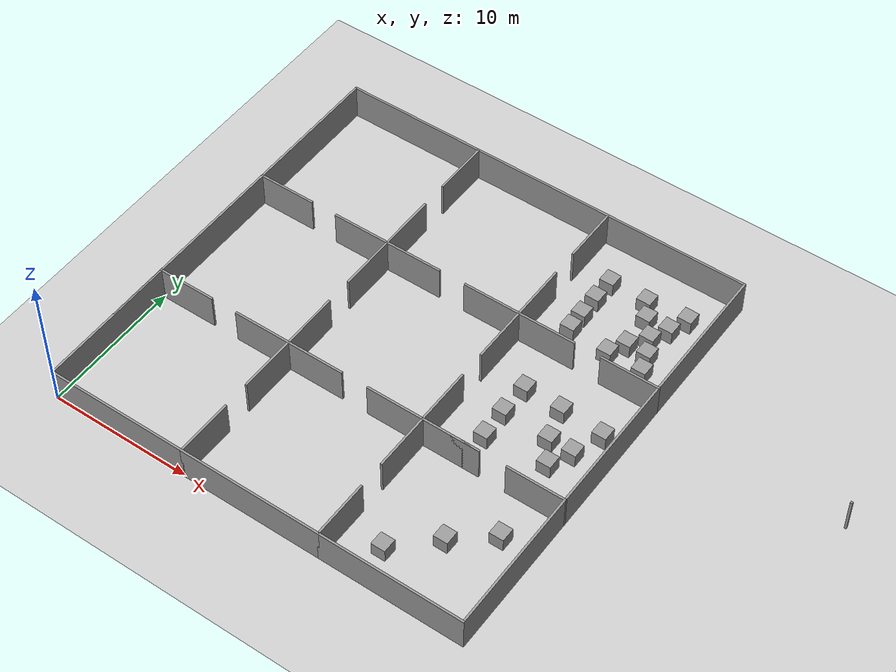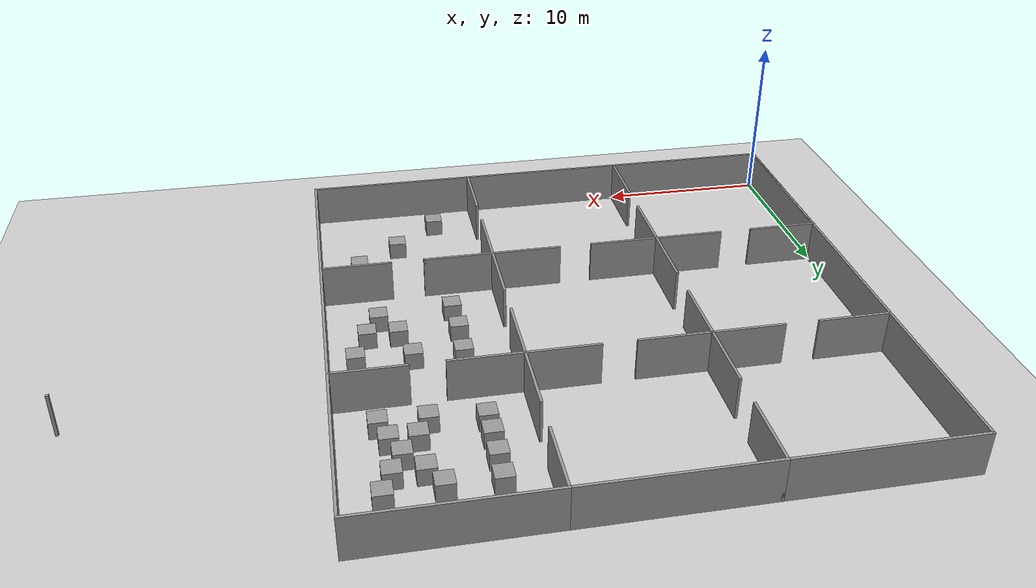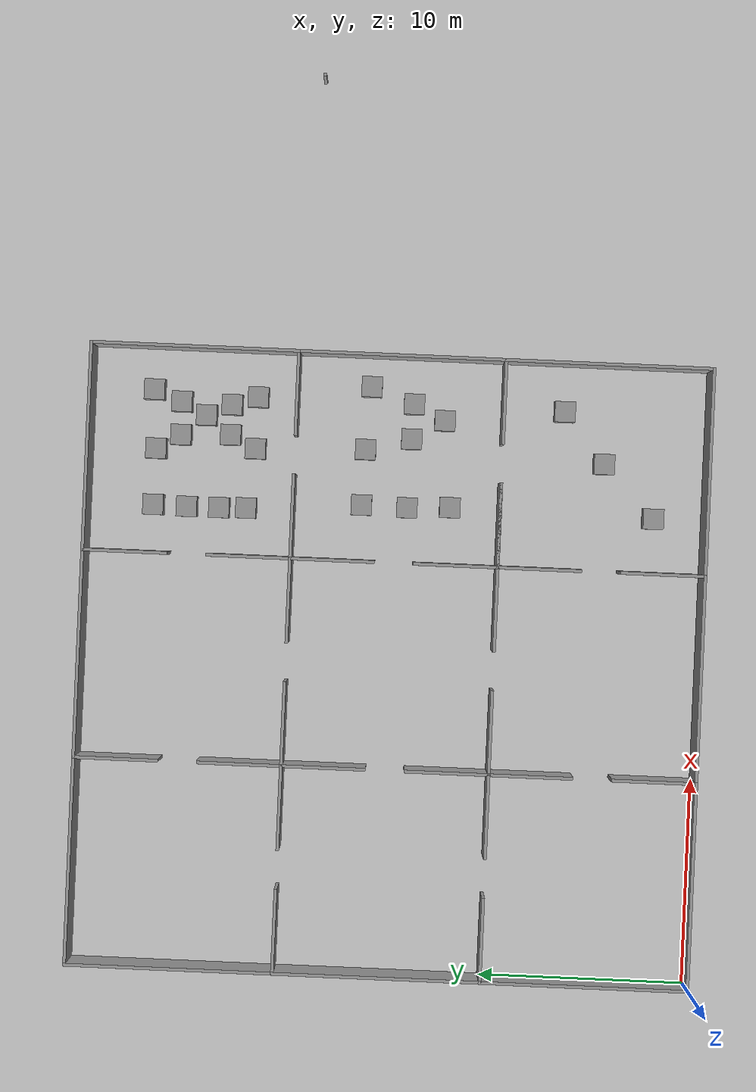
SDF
<sdf version="1.7">
 <world name="default">
  <model name="ground_plane">
   <static>1</static>
   <link name="link">
    <collision name="collision">
     <geometry><plane><normal>0 0 1</normal><size>100 100</size></plane></geometry>
     <surface>
      <contact><collide_bitmask>65535</collide_bitmask></contact>
      <friction><ode><mu>100</mu><mu2>50</mu2></ode></friction>
     </surface>
    </collision>
    <visual name="visual">
     <cast_shadows>0</cast_shadows>
     <geometry><plane><normal>0 0 1</normal><size>100 100</size></plane></geometry>
     <material>
      <script><uri>file://media/materials/scripts/gazebo.material</uri><name>Gazebo/Grey</name></script>
     </material>
    </visual>
   </link>
  </model>
  <model name="Building_3x3">
   <pose>21.6715 15 0 0 -0 0</pose>
   <link name="Wall_17">
    <collision name="Wall_17_Collision">
     <geometry><box><size>4.15 0.15 2.5</size></box></geometry>
     <pose>0 0 1.25 0 -0 0</pose>
    </collision>
    <visual name="Wall_17_Visual">
     <pose>0 0 1.25 0 -0 0</pose>
     <geometry><box><size>4.15 0.15 2.5</size></box></geometry>
     <material>
      <script><uri>file://media/materials/scripts/gazebo.material</uri><name>Gazebo/Grey</name></script>
      <ambient>1 1 1 1</ambient>
     </material>
     <meta><layer>0</layer></meta>
    </visual>
    <pose>-13.6715 -5 0 0 -0 0</pose>
   </link>
   <link name="Wall_20">
    <collision name="Wall_20_Collision">
     <geometry><box><size>10.15 0.15 2.5</size></box></geometry>
     <pose>0 0 1.25 0 -0 0</pose>
    </collision>
    <visual name="Wall_20_Visual">
     <pose>0 0 1.25 0 -0 0</pose>
     <geometry><box><size>10.15 0.15 2.5</size></box></geometry>
     <material>
      <script><uri>file://media/materials/scripts/gazebo.material</uri><name>Gazebo/Grey</name></script>
      <ambient>1 1 1 1</ambient>
     </material>
     <meta><layer>0</layer></meta>
    </visual>
    <pose>-21.6715 -10 0 0 -0 1.5708</pose>
   </link>
   <link name="Wall_22">
    <collision name="Wall_22_Collision">
     <geometry><box><size>4.15 0.15 2.5</size></box></geometry>
     <pose>0 0 1.25 0 -0 0</pose>
    </collision>
    <visual name="Wall_22_Visual">
     <pose>0 0 1.25 0 -0 0</pose>
     <geometry><box><size>4.15 0.15 2.5</size></box></geometry>
     <material>
      <script><uri>file://media/materials/scripts/gazebo.material</uri><name>Gazebo/Grey</name></script>
      <ambient>1 1 1 1</ambient>
     </material>
     <meta><layer>0</layer></meta>
    </visual>
    <pose>-19.6715 -5 0 0 -0 0</pose>
   </link>
   <link name="Wall_26">
    <collision name="Wall_26_Collision">
     <geometry><box><size>10.15 0.15 2.5</size></box></geometry>
     <pose>0 0 1.25 0 -0 0</pose>
    </collision>
    <visual name="Wall_26_Visual">
     <pose>0 0 1.25 0 -0 0</pose>
     <geometry><box><size>10.15 0.15 2.5</size></box></geometry>
     <material>
      <script><uri>file://media/materials/scripts/gazebo.material</uri><name>Gazebo/Grey</name></script>
      <ambient>1 1 1 1</ambient>
     </material>
     <meta><layer>0</layer></meta>
    </visual>
    <pose>-16.6715 -15 0 0 -0 0</pose>
   </link>
   <link name="Wall_28">
    <collision name="Wall_28_Collision">
     <geometry><box><size>4.15 0.15 2.5</size></box></geometry>
     <pose>0 0 1.25 0 -0 0</pose>
    </collision>
    <visual name="Wall_28_Visual">
     <pose>0 0 1.25 0 -0 0</pose>
     <geometry><box><size>4.15 0.15 2.5</size></box></geometry>
     <material>
      <script><uri>file://media/materials/scripts/gazebo.material</uri><name>Gazebo/Grey</name></script>
      <ambient>1 1 1 1</ambient>
     </material>
     <meta><layer>0</layer></meta>
    </visual>
    <pose>-11.6715 -7 0 0 -0 1.5708</pose>
   </link>
   <link name="Wall_30">
    <collision name="Wall_30_Collision">
     <geometry><box><size>4.15 0.15 2.5</size></box></geometry>
     <pose>0 0 1.25 0 -0 0</pose>
    </collision>
    <visual name="Wall_30_Visual">
     <pose>0 0 1.25 0 -0 0</pose>
     <geometry><box><size>4.15 0.15 2.5</size></box></geometry>
     <material>
      <script><uri>file://media/materials/scripts/gazebo.material</uri><name>Gazebo/Grey</name></script>
      <ambient>1 1 1 1</ambient>
     </material>
     <meta><layer>0</layer></meta>
    </visual>
    <pose>-11.6715 -13 0 0 -0 1.5708</pose>
   </link>
   <link name="Wall_33">
    <collision name="Wall_33_Collision">
     <geometry><box><size>10.15 0.15 2.5</size></box></geometry>
     <pose>0 0 1.25 0 -0 0</pose>
    </collision>
    <visual name="Wall_33_Visual">
     <pose>0 0 1.25 0 -0 0</pose>
     <geometry><box><size>10.15 0.15 2.5</size></box></geometry>
     <material>
      <script><uri>file://media/materials/scripts/gazebo.material</uri><name>Gazebo/Grey</name></script>
      <ambient>1 1 1 1</ambient>
     </material>
     <meta><layer>0</layer></meta>
    </visual>
    <pose>-6.67153 -15 0 0 -0 0</pose>
   </link>
   <link name="Wall_35">
    <collision name="Wall_35_Collision">
     <geometry><box><size>4.15 0.15 2.5</size></box></geometry>
     <pose>0 0 1.25 0 -0 0</pose>
    </collision>
    <visual name="Wall_35_Visual">
     <pose>0 0 1.25 0 -0 0</pose>
     <geometry><box><size>4.15 0.15 2.5</size></box></geometry>
     <material>
      <script><uri>file://media/materials/scripts/gazebo.material</uri><name>Gazebo/Grey</name></script>
      <ambient>1 1 1 1</ambient>
     </material>
     <meta><layer>0</layer></meta>
    </visual>
    <pose>-1.67153 -13 0 0 -0 -1.5708</pose>
   </link>
   <link name="Wall_37">
    <collision name="Wall_37_Collision">
     <geometry><box><size>4.15 0.15 2.5</size></box></geometry>
     <pose>0 0 1.25 0 -0 0</pose>
    </collision>
    <visual name="Wall_37_Visual">
     <pose>0 0 1.25 0 -0 0</pose>
     <geometry><box><size>4.15 0.15 2.5</size></box></geometry>
     <material>
      <script><uri>file://media/materials/scripts/gazebo.material</uri><name>Gazebo/Grey</name></script>
      <ambient>1 1 1 1</ambient>
     </material>
     <meta><layer>0</layer></meta>
    </visual>
    <pose>-1.67153 -7 0 0 -0 1.5708</pose>
   </link>
   <link name="Wall_39">
    <collision name="Wall_39_Collision">
     <geometry><box><size>4.15 0.15 2.5</size></box></geometry>
     <pose>0 0 1.25 0 -0 0</pose>
    </collision>
    <visual name="Wall_39_Visual">
     <pose>0 0 1.25 0 -0 0</pose>
     <geometry><box><size>4.15 0.15 2.5</size></box></geometry>
     <material>
      <script><uri>file://media/materials/scripts/gazebo.material</uri><name>Gazebo/Grey</name></script>
      <ambient>1 1 1 1</ambient>
     </material>
     <meta><layer>0</layer></meta>
    </visual>
    <pose>-9.67153 -5 0 0 -0 0</pose>
   </link>
   <link name="Wall_41">
    <collision name="Wall_41_Collision">
     <geometry><box><size>8.15 0.15 2.5</size></box></geometry>
     <pose>0 0 1.25 0 -0 0</pose>
    </collision>
    <visual name="Wall_41_Visual">
     <pose>0 0 1.25 0 -0 0</pose>
     <geometry><box><size>8.15 0.15 2.5</size></box></geometry>
     <material>
      <script><uri>file://media/materials/scripts/gazebo.material</uri><name>Gazebo/Grey</name></script>
      <ambient>1 1 1 1</ambient>
     </material>
     <meta><layer>0</layer></meta>
    </visual>
    <pose>-1.67153 -5 0 0 -0 0</pose>
   </link>
   <link name="Wall_44">
    <collision name="Wall_44_Collision">
     <geometry><box><size>10.15 0.15 2.5</size></box></geometry>
     <pose>0 0 1.25 0 -0 0</pose>
    </collision>
    <visual name="Wall_44_Visual">
     <pose>0 0 1.25 0 -0 0</pose>
     <geometry><box><size>10.15 0.15 2.5</size></box></geometry>
     <material>
      <script><uri>file://media/materials/scripts/gazebo.material</uri><name>Gazebo/Grey</name></script>
      <ambient>1 1 1 1</ambient>
     </material>
     <meta><layer>0</layer></meta>
    </visual>
    <pose>3.32847 -15 0 0 -0 0</pose>
   </link>
   <link name="Wall_46">
    <collision name="Wall_46_Collision">
     <geometry><box><size>10.15 0.15 2.5</size></box></geometry>
     <pose>0 0 1.25 0 -0 0</pose>
    </collision>
    <visual name="Wall_46_Visual">
     <pose>0 0 1.25 0 -0 0</pose>
     <geometry><box><size>10.15 0.15 2.5</size></box></geometry>
     <material>
      <script><uri>file://media/materials/scripts/gazebo.material</uri><name>Gazebo/Grey</name></script>
      <ambient>1 1 1 1</ambient>
     </material>
     <meta><layer>0</layer></meta>
    </visual>
    <pose>8.32847 -10 0 0 -0 1.5708</pose>
   </link>
   <link name="Wall_48">
    <collision name="Wall_48_Collision">
     <geometry><box><size>4.15 0.15 2.5</size></box></geometry>
     <pose>0 0 1.25 0 -0 0</pose>
    </collision>
    <visual name="Wall_48_Visual">
     <pose>0 0 1.25 0 -0 0</pose>
     <geometry><box><size>4.15 0.15 2.5</size></box></geometry>
     <material>
      <script><uri>file://media/materials/scripts/gazebo.material</uri><name>Gazebo/Grey</name></script>
      <ambient>1 1 1 1</ambient>
     </material>
     <meta><layer>0</layer></meta>
    </visual>
    <pose>6.32847 -5 0 0 -0 3.14159</pose>
   </link>
   <link name="Wall_50">
    <collision name="Wall_50_Collision">
     <geometry><box><size>0.16 0.15 2.5</size></box></geometry>
     <pose>0 0 1.25 0 -0 0</pose>
    </collision>
    <visual name="Wall_50_Visual">
     <pose>0 0 1.25 0 -0 0</pose>
     <geometry><box><size>0.16 0.15 2.5</size></box></geometry>
     <material>
      <script><uri>file://media/materials/scripts/gazebo.material</uri><name>Gazebo/Grey</name></script>
      <ambient>1 1 1 1</ambient>
     </material>
     <meta><layer>0</layer></meta>
    </visual>
    <pose>21.6665 4.32487 0 0 -0 0</pose>
   </link>
   <link name="Wall_52">
    <collision name="Wall_52_Collision">
     <geometry><box><size>4.15 0.15 2.5</size></box></geometry>
     <pose>0 0 1.25 0 -0 0</pose>
    </collision>
    <visual name="Wall_52_Visual">
     <pose>0 0 1.25 0 -0 0</pose>
     <geometry><box><size>4.15 0.15 2.5</size></box></geometry>
     <material>
      <script><uri>file://media/materials/scripts/gazebo.material</uri><name>Gazebo/Grey</name></script>
      <ambient>1 1 1 1</ambient>
     </material>
     <meta><layer>0</layer></meta>
    </visual>
    <pose>0.328472 -5 0 0 -0 0</pose>
   </link>
   <link name="Wall_54">
    <collision name="Wall_54_Collision">
     <geometry><box><size>20.15 0.15 2.5</size></box></geometry>
     <pose>0 0 1.25 0 -0 0</pose>
    </collision>
    <visual name="Wall_54_Visual">
     <pose>0 0 1.25 0 -0 0</pose>
     <geometry><box><size>20.15 0.15 2.5</size></box></geometry>
     <material>
      <script><uri>file://media/materials/scripts/gazebo.material</uri><name>Gazebo/Grey</name></script>
      <ambient>1 1 1 1</ambient>
     </material>
     <meta><layer>0</layer></meta>
    </visual>
    <pose>-21.6715 -5 0 0 -0 1.5708</pose>
   </link>
   <link name="Wall_56">
    <collision name="Wall_56_Collision">
     <geometry><box><size>10.15 0.15 2.5</size></box></geometry>
     <pose>0 0 1.25 0 -0 0</pose>
    </collision>
    <visual name="Wall_56_Visual">
     <pose>0 0 1.25 0 -0 0</pose>
     <geometry><box><size>10.15 0.15 2.5</size></box></geometry>
     <material>
      <script><uri>file://media/materials/scripts/gazebo.material</uri><name>Gazebo/Grey</name></script>
      <ambient>1 1 1 1</ambient>
     </material>
     <meta><layer>0</layer></meta>
    </visual>
    <pose>-21.6715 10 0 0 -0 1.5708</pose>
   </link>
   <link name="Wall_58">
    <collision name="Wall_58_Collision">
     <geometry><box><size>10.15 0.15 2.5</size></box></geometry>
     <pose>0 0 1.25 0 -0 0</pose>
    </collision>
    <visual name="Wall_58_Visual">
     <pose>0 0 1.25 0 -0 0</pose>
     <geometry><box><size>10.15 0.15 2.5</size></box></geometry>
     <material>
      <script><uri>file://media/materials/scripts/gazebo.material</uri><name>Gazebo/Grey</name></script>
      <ambient>1 1 1 1</ambient>
     </material>
     <meta><layer>0</layer></meta>
    </visual>
    <pose>3.32847 15 0 0 -0 0</pose>
   </link>
   <link name="Wall_60">
    <collision name="Wall_60_Collision">
     <geometry><box><size>10.15 0.15 2.5</size></box></geometry>
     <pose>0 0 1.25 0 -0 0</pose>
    </collision>
    <visual name="Wall_60_Visual">
     <pose>0 0 1.25 0 -0 0</pose>
     <geometry><box><size>10.15 0.15 2.5</size></box></geometry>
     <material>
      <script><uri>file://media/materials/scripts/gazebo.material</uri><name>Gazebo/Grey</name></script>
      <ambient>1 1 1 1</ambient>
     </material>
     <meta><layer>0</layer></meta>
    </visual>
    <pose>-6.67153 15 0 0 -0 0</pose>
   </link>
   <link name="Wall_62">
    <collision name="Wall_62_Collision">
     <geometry><box><size>10.15 0.15 2.5</size></box></geometry>
     <pose>0 0 1.25 0 -0 0</pose>
    </collision>
    <visual name="Wall_62_Visual">
     <pose>0 0 1.25 0 -0 0</pose>
     <geometry><box><size>10.15 0.15 2.5</size></box></geometry>
     <material>
      <script><uri>file://media/materials/scripts/gazebo.material</uri><name>Gazebo/Grey</name></script>
      <ambient>1 1 1 1</ambient>
     </material>
     <meta><layer>0</layer></meta>
    </visual>
    <pose>-16.6715 15 0 0 -0 0</pose>
   </link>
   <link name="Wall_64">
    <collision name="Wall_64_Collision">
     <geometry><box><size>10.15 0.15 2.5</size></box></geometry>
     <pose>0 0 1.25 0 -0 0</pose>
    </collision>
    <visual name="Wall_64_Visual">
     <pose>0 0 1.25 0 -0 0</pose>
     <geometry><box><size>10.15 0.15 2.5</size></box></geometry>
     <material>
      <script><uri>file://media/materials/scripts/gazebo.material</uri><name>Gazebo/Grey</name></script>
      <ambient>1 1 1 1</ambient>
     </material>
     <meta><layer>0</layer></meta>
    </visual>
    <pose>8.32847 10 0 0 -0 -1.5708</pose>
   </link>
   <link name="Wall_66">
    <collision name="Wall_66_Collision">
     <geometry><box><size>10.15 0.15 2.5</size></box></geometry>
     <pose>0 0 1.25 0 -0 0</pose>
    </collision>
    <visual name="Wall_66_Visual">
     <pose>0 0 1.25 0 -0 0</pose>
     <geometry><box><size>10.15 0.15 2.5</size></box></geometry>
     <material>
      <script><uri>file://media/materials/scripts/gazebo.material</uri><name>Gazebo/Grey</name></script>
      <ambient>1 1 1 1</ambient>
     </material>
     <meta><layer>0</layer></meta>
    </visual>
    <pose>8.32847 0 0 0 -0 -1.5708</pose>
   </link>
   <link name="Wall_68">
    <collision name="Wall_68_Collision">
     <geometry><box><size>4.15 0.15 2.5</size></box></geometry>
     <pose>0 0 1.25 0 -0 0</pose>
    </collision>
    <visual name="Wall_68_Visual">
     <pose>0 0 1.25 0 -0 0</pose>
     <geometry><box><size>4.15 0.15 2.5</size></box></geometry>
     <material>
      <script><uri>file://media/materials/scripts/gazebo.material</uri><name>Gazebo/Grey</name></script>
      <ambient>1 1 1 1</ambient>
     </material>
     <meta><layer>0</layer></meta>
    </visual>
    <pose>-19.6715 5 0 0 -0 0</pose>
   </link>
   <link name="Wall_70">
    <collision name="Wall_70_Collision">
     <geometry><box><size>4.15 0.15 2.5</size></box></geometry>
     <pose>0 0 1.25 0 -0 0</pose>
    </collision>
    <visual name="Wall_70_Visual">
     <pose>0 0 1.25 0 -0 0</pose>
     <geometry><box><size>4.15 0.15 2.5</size></box></geometry>
     <material>
      <script><uri>file://media/materials/scripts/gazebo.material</uri><name>Gazebo/Grey</name></script>
      <ambient>1 1 1 1</ambient>
     </material>
     <meta><layer>0</layer></meta>
    </visual>
    <pose>-13.6715 5 0 0 -0 0</pose>
   </link>
   <link name="Wall_72">
    <collision name="Wall_72_Collision">
     <geometry><box><size>4.15 0.15 2.5</size></box></geometry>
     <pose>0 0 1.25 0 -0 0</pose>
    </collision>
    <visual name="Wall_72_Visual">
     <pose>0 0 1.25 0 -0 0</pose>
     <geometry><box><size>4.15 0.15 2.5</size></box></geometry>
     <material>
      <script><uri>file://media/materials/scripts/gazebo.material</uri><name>Gazebo/Grey</name></script>
      <ambient>1 1 1 1</ambient>
     </material>
     <meta><layer>0</layer></meta>
    </visual>
    <pose>-11.6715 3 0 0 -0 -1.5708</pose>
   </link>
   <link name="Wall_74">
    <collision name="Wall_74_Collision">
     <geometry><box><size>4.15 0.15 2.5</size></box></geometry>
     <pose>0 0 1.25 0 -0 0</pose>
    </collision>
    <visual name="Wall_74_Visual">
     <pose>0 0 1.25 0 -0 0</pose>
     <geometry><box><size>4.15 0.15 2.5</size></box></geometry>
     <material>
      <script><uri>file://media/materials/scripts/gazebo.material</uri><name>Gazebo/Grey</name></script>
      <ambient>1 1 1 1</ambient>
     </material>
     <meta><layer>0</layer></meta>
    </visual>
    <pose>-11.6715 -3 0 0 -0 1.5708</pose>
   </link>
   <link name="Wall_76">
    <collision name="Wall_76_Collision">
     <geometry><box><size>4.15 0.15 2.5</size></box></geometry>
     <pose>0 0 1.25 0 -0 0</pose>
    </collision>
    <visual name="Wall_76_Visual">
     <pose>0 0 1.25 0 -0 0</pose>
     <geometry><box><size>4.15 0.15 2.5</size></box></geometry>
     <material>
      <script><uri>file://media/materials/scripts/gazebo.material</uri><name>Gazebo/Grey</name></script>
      <ambient>1 1 1 1</ambient>
     </material>
     <meta><layer>0</layer></meta>
    </visual>
    <pose>-3.67153 5 0 0 -0 3.14159</pose>
   </link>
   <link name="Wall_78">
    <collision name="Wall_78_Collision">
     <geometry><box><size>4.15 0.15 2.5</size></box></geometry>
     <pose>0 0 1.25 0 -0 0</pose>
    </collision>
    <visual name="Wall_78_Visual">
     <pose>0 0 1.25 0 -0 0</pose>
     <geometry><box><size>4.15 0.15 2.5</size></box></geometry>
     <material>
      <script><uri>file://media/materials/scripts/gazebo.material</uri><name>Gazebo/Grey</name></script>
      <ambient>1 1 1 1</ambient>
     </material>
     <meta><layer>0</layer></meta>
    </visual>
    <pose>-9.67153 5 0 0 -0 0</pose>
   </link>
   <link name="Wall_80">
    <collision name="Wall_80_Collision">
     <geometry><box><size>4.15 0.15 2.5</size></box></geometry>
     <pose>0 0 1.25 0 -0 0</pose>
    </collision>
    <visual name="Wall_80_Visual">
     <pose>0 0 1.25 0 -0 0</pose>
     <geometry><box><size>4.15 0.15 2.5</size></box></geometry>
     <material>
      <script><uri>file://media/materials/scripts/gazebo.material</uri><name>Gazebo/Grey</name></script>
      <ambient>1 1 1 1</ambient>
     </material>
     <meta><layer>0</layer></meta>
    </visual>
    <pose>-1.67153 3 0 0 -0 -1.5708</pose>
   </link>
   <link name="Wall_82">
    <collision name="Wall_82_Collision">
     <geometry><box><size>4.15 0.15 2.5</size></box></geometry>
     <pose>0 0 1.25 0 -0 0</pose>
    </collision>
    <visual name="Wall_82_Visual">
     <pose>0 0 1.25 0 -0 0</pose>
     <geometry><box><size>4.15 0.15 2.5</size></box></geometry>
     <material>
      <script><uri>file://media/materials/scripts/gazebo.material</uri><name>Gazebo/Grey</name></script>
      <ambient>1 1 1 1</ambient>
     </material>
     <meta><layer>0</layer></meta>
    </visual>
    <pose>-1.67153 -3 0 0 -0 1.5708</pose>
   </link>
   <link name="Wall_84">
    <collision name="Wall_84_Collision">
     <geometry><box><size>4.15 0.15 2.5</size></box></geometry>
     <pose>0 0 1.25 0 -0 0</pose>
    </collision>
    <visual name="Wall_84_Visual">
     <pose>0 0 1.25 0 -0 0</pose>
     <geometry><box><size>4.15 0.15 2.5</size></box></geometry>
     <material>
      <script><uri>file://media/materials/scripts/gazebo.material</uri><name>Gazebo/Grey</name></script>
      <ambient>1 1 1 1</ambient>
     </material>
     <meta><layer>0</layer></meta>
    </visual>
    <pose>0.328472 5 0 0 -0 0</pose>
   </link>
   <link name="Wall_86">
    <collision name="Wall_86_Collision">
     <geometry><box><size>4.15 0.15 2.5</size></box></geometry>
     <pose>0 0 1.25 0 -0 0</pose>
    </collision>
    <visual name="Wall_86_Visual">
     <pose>0 0 1.25 0 -0 0</pose>
     <geometry><box><size>4.15 0.15 2.5</size></box></geometry>
     <material>
      <script><uri>file://media/materials/scripts/gazebo.material</uri><name>Gazebo/Grey</name></script>
      <ambient>1 1 1 1</ambient>
     </material>
     <meta><layer>0</layer></meta>
    </visual>
    <pose>6.32847 5 0 0 -0 0</pose>
   </link>
   <link name="Wall_88">
    <collision name="Wall_88_Collision">
     <geometry><box><size>4.15 0.15 2.5</size></box></geometry>
     <pose>0 0 1.25 0 -0 0</pose>
    </collision>
    <visual name="Wall_88_Visual">
     <pose>0 0 1.25 0 -0 0</pose>
     <geometry><box><size>4.15 0.15 2.5</size></box></geometry>
     <material>
      <script><uri>file://media/materials/scripts/gazebo.material</uri><name>Gazebo/Grey</name></script>
      <ambient>1 1 1 1</ambient>
     </material>
     <meta><layer>0</layer></meta>
    </visual>
    <pose>-1.67153 13 0 0 -0 -1.5708</pose>
   </link>
   <link name="Wall_90">
    <collision name="Wall_90_Collision">
     <geometry><box><size>4.15 0.15 2.5</size></box></geometry>
     <pose>0 0 1.25 0 -0 0</pose>
    </collision>
    <visual name="Wall_90_Visual">
     <pose>0 0 1.25 0 -0 0</pose>
     <geometry><box><size>4.15 0.15 2.5</size></box></geometry>
     <material>
      <script><uri>file://media/materials/scripts/gazebo.material</uri><name>Gazebo/Grey</name></script>
      <ambient>1 1 1 1</ambient>
     </material>
     <meta><layer>0</layer></meta>
    </visual>
    <pose>-1.67153 7 0 0 -0 1.5708</pose>
   </link>
   <link name="Wall_92">
    <collision name="Wall_92_Collision">
     <geometry><box><size>4.15 0.15 2.5</size></box></geometry>
     <pose>0 0 1.25 0 -0 0</pose>
    </collision>
    <visual name="Wall_92_Visual">
     <pose>0 0 1.25 0 -0 0</pose>
     <geometry><box><size>4.15 0.15 2.5</size></box></geometry>
     <material>
      <script><uri>file://media/materials/scripts/gazebo.material</uri><name>Gazebo/Grey</name></script>
      <ambient>1 1 1 1</ambient>
     </material>
     <meta><layer>0</layer></meta>
    </visual>
    <pose>-11.6715 7 0 0 -0 1.5708</pose>
   </link>
   <link name="Wall_94">
    <collision name="Wall_94_Collision">
     <geometry><box><size>4.15 0.15 2.5</size></box></geometry>
     <pose>0 0 1.25 0 -0 0</pose>
    </collision>
    <visual name="Wall_94_Visual">
     <pose>0 0 1.25 0 -0 0</pose>
     <geometry><box><size>4.15 0.15 2.5</size></box></geometry>
     <material>
      <script><uri>file://media/materials/scripts/gazebo.material</uri><name>Gazebo/Grey</name></script>
      <ambient>1 1 1 1</ambient>
     </material>
     <meta><layer>0</layer></meta>
    </visual>
    <pose>-11.6715 13 0 0 -0 1.5708</pose>
   </link>
   <static>1</static>
  </model>
  <model name="unit_box_1_clone">
   <pose>22.6621 2.46352 0.499995 0 -1e-05 0</pose>
   <link name="link">
    <inertial>
     <mass>1</mass>
     <inertia>
      <ixx>0.166667</ixx>
      <ixy>0</ixy>
      <ixz>0</ixz>
      <iyy>0.166667</iyy>
      <iyz>0</iyz>
      <izz>0.166667</izz>
     </inertia>
    </inertial>
    <collision name="collision"><geometry><box><size>1 1 1</size></box></geometry></collision>
    <visual name="visual">
     <geometry><box><size>1 1 1</size></box></geometry>
     <material>
      <script><name>Gazebo/Grey</name><uri>file://media/materials/scripts/gazebo.material</uri></script>
     </material>
    </visual>
   </link>
  </model>
  <model name="unit_box_1_clone_0">
   <pose>25.228 4.96246 0.499995 -1e-05 -0 0</pose>
   <link name="link">
    <inertial>
     <mass>1</mass>
     <inertia>
      <ixx>0.166667</ixx>
      <ixy>0</ixy>
      <ixz>0</ixz>
      <iyy>0.166667</iyy>
      <iyz>0</iyz>
      <izz>0.166667</izz>
     </inertia>
    </inertial>
    <collision name="collision"><geometry><box><size>1 1 1</size></box></geometry></collision>
    <visual name="visual">
     <geometry><box><size>1 1 1</size></box></geometry>
     <material>
      <script><name>Gazebo/Grey</name><uri>file://media/materials/scripts/gazebo.material</uri></script>
     </material>
    </visual>
   </link>
  </model>
  <model name="unit_box_1_clone_1">
   <pose>27.6999 6.98178 0.499995 -1e-05 0 0</pose>
   <link name="link">
    <inertial>
     <mass>1</mass>
     <inertia>
      <ixx>0.166667</ixx>
      <ixy>0</ixy>
      <ixz>0</ixz>
      <iyy>0.166667</iyy>
      <iyz>0</iyz>
      <izz>0.166667</izz>
     </inertia>
    </inertial>
    <collision name="collision"><geometry><box><size>1 1 1</size></box></geometry></collision>
    <visual name="visual">
     <geometry><box><size>1 1 1</size></box></geometry>
     <material>
      <script><name>Gazebo/Grey</name><uri>file://media/materials/scripts/gazebo.material</uri></script>
     </material>
    </visual>
   </link>
  </model>
  <model name="unit_box_2">
   <pose>22.7346 16.6997 0.499995 0 -1e-05 0</pose>
   <link name="link">
    <inertial>
     <mass>1</mass>
     <inertia>
      <ixx>0.166667</ixx>
      <ixy>0</ixy>
      <ixz>0</ixz>
      <iyy>0.166667</iyy>
      <iyz>0</iyz>
      <izz>0.166667</izz>
     </inertia>
    </inertial>
    <collision name="collision"><geometry><box><size>1 1 1</size></box></geometry></collision>
    <visual name="visual">
     <geometry><box><size>1 1 1</size></box></geometry>
     <material>
      <script><name>Gazebo/Grey</name><uri>file://media/materials/scripts/gazebo.material</uri></script>
     </material>
    </visual>
   </link>
  </model>
  <model name="unit_box_1_clone_2">
   <pose>22.6959 14.4762 0.499995 -1e-05 -0 0</pose>
   <link name="link">
    <inertial>
     <mass>1</mass>
     <inertia>
      <ixx>0.166667</ixx>
      <ixy>0</ixy>
      <ixz>0</ixz>
      <iyy>0.166667</iyy>
      <iyz>0</iyz>
      <izz>0.166667</izz>
     </inertia>
    </inertial>
    <collision name="collision"><geometry><box><size>1 1 1</size></box></geometry></collision>
    <visual name="visual">
     <geometry><box><size>1 1 1</size></box></geometry>
     <material>
      <script><name>Gazebo/Grey</name><uri>file://media/materials/scripts/gazebo.material</uri></script>
     </material>
    </visual>
   </link>
  </model>
  <model name="unit_box_1_clone_3">
   <pose>22.7952 12.3886 0.499995 0 -1e-05 0</pose>
   <link name="link">
    <inertial>
     <mass>1</mass>
     <inertia>
      <ixx>0.166667</ixx>
      <ixy>0</ixy>
      <ixz>0</ixz>
      <iyy>0.166667</iyy>
      <iyz>0</iyz>
      <izz>0.166667</izz>
     </inertia>
    </inertial>
    <collision name="collision"><geometry><box><size>1 1 1</size></box></geometry></collision>
    <visual name="visual">
     <geometry><box><size>1 1 1</size></box></geometry>
     <material>
      <script><name>Gazebo/Grey</name><uri>file://media/materials/scripts/gazebo.material</uri></script>
     </material>
    </visual>
   </link>
  </model>
  <model name="unit_box_1_clone_4">
   <pose>25.4457 16.6107 0.499995 -1e-05 0 0</pose>
   <link name="link">
    <inertial>
     <mass>1</mass>
     <inertia>
      <ixx>0.166667</ixx>
      <ixy>0</ixy>
      <ixz>0</ixz>
      <iyy>0.166667</iyy>
      <iyz>0</iyz>
      <izz>0.166667</izz>
     </inertia>
    </inertial>
    <collision name="collision"><geometry><box><size>1 1 1</size></box></geometry></collision>
    <visual name="visual">
     <geometry><box><size>1 1 1</size></box></geometry>
     <material>
      <script><name>Gazebo/Grey</name><uri>file://media/materials/scripts/gazebo.material</uri></script>
     </material>
    </visual>
   </link>
  </model>
  <model name="unit_box_1_clone_5">
   <pose>26.0439 14.3862 0.499995 0 -1e-05 0</pose>
   <link name="link">
    <inertial>
     <mass>1</mass>
     <inertia>
      <ixx>0.166667</ixx>
      <ixy>0</ixy>
      <ixz>0</ixz>
      <iyy>0.166667</iyy>
      <iyz>0</iyz>
      <izz>0.166667</izz>
     </inertia>
    </inertial>
    <collision name="collision"><geometry><box><size>1 1 1</size></box></geometry></collision>
    <visual name="visual">
     <geometry><box><size>1 1 1</size></box></geometry>
     <material>
      <script><name>Gazebo/Grey</name><uri>file://media/materials/scripts/gazebo.material</uri></script>
     </material>
    </visual>
   </link>
  </model>
  <model name="unit_box_1_clone_6">
   <pose>27.0108 12.8015 0.499995 0 -1e-05 0</pose>
   <link name="link">
    <inertial>
     <mass>1</mass>
     <inertia>
      <ixx>0.166667</ixx>
      <ixy>0</ixy>
      <ixz>0</ixz>
      <iyy>0.166667</iyy>
      <iyz>0</iyz>
      <izz>0.166667</izz>
     </inertia>
    </inertial>
    <collision name="collision"><geometry><box><size>1 1 1</size></box></geometry></collision>
    <visual name="visual">
     <geometry><box><size>1 1 1</size></box></geometry>
     <material>
      <script><name>Gazebo/Grey</name><uri>file://media/materials/scripts/gazebo.material</uri></script>
     </material>
    </visual>
   </link>
  </model>
  <model name="unit_box_1_clone_7">
   <pose>27.7529 14.3277 0.499995 0 -1e-05 0</pose>
   <link name="link">
    <inertial>
     <mass>1</mass>
     <inertia>
      <ixx>0.166667</ixx>
      <ixy>0</ixy>
      <ixz>0</ixz>
      <iyy>0.166667</iyy>
      <iyz>0</iyz>
      <izz>0.166667</izz>
     </inertia>
    </inertial>
    <collision name="collision"><geometry><box><size>1 1 1</size></box></geometry></collision>
    <visual name="visual">
     <geometry><box><size>1 1 1</size></box></geometry>
     <material>
      <script><name>Gazebo/Grey</name><uri>file://media/materials/scripts/gazebo.material</uri></script>
     </material>
    </visual>
   </link>
  </model>
  <model name="unit_box_1_clone_8">
   <pose>28.5137 16.4229 0.499995 0 -1e-05 0</pose>
   <link name="link">
    <inertial>
     <mass>1</mass>
     <inertia>
      <ixx>0.166667</ixx>
      <ixy>0</ixy>
      <ixz>0</ixz>
      <iyy>0.166667</iyy>
      <iyz>0</iyz>
      <izz>0.166667</izz>
     </inertia>
    </inertial>
    <collision name="collision"><geometry><box><size>1 1 1</size></box></geometry></collision>
    <visual name="visual">
     <geometry><box><size>1 1 1</size></box></geometry>
     <material>
      <script><name>Gazebo/Grey</name><uri>file://media/materials/scripts/gazebo.material</uri></script>
     </material>
    </visual>
   </link>
  </model>
  <model name="unit_box_3">
   <pose>27.9358 26.9978 0.499995 0 1e-05 0</pose>
   <link name="link">
    <inertial>
     <mass>1</mass>
     <inertia>
      <ixx>0.166667</ixx>
      <ixy>0</ixy>
      <ixz>0</ixz>
      <iyy>0.166667</iyy>
      <iyz>0</iyz>
      <izz>0.166667</izz>
     </inertia>
    </inertial>
    <collision name="collision"><geometry><box><size>1 1 1</size></box></geometry></collision>
    <visual name="visual">
     <geometry><box><size>1 1 1</size></box></geometry>
     <material>
      <script><name>Gazebo/Grey</name><uri>file://media/materials/scripts/gazebo.material</uri></script>
     </material>
    </visual>
   </link>
  </model>
  <model name="unit_box_3_clone">
   <pose>27.4026 25.6425 0.499995 0 -1e-05 0</pose>
   <link name="link">
    <inertial>
     <mass>1</mass>
     <inertia>
      <ixx>0.166667</ixx>
      <ixy>0</ixy>
      <ixz>0</ixz>
      <iyy>0.166667</iyy>
      <iyz>0</iyz>
      <izz>0.166667</izz>
     </inertia>
    </inertial>
    <collision name="collision"><geometry><box><size>1 1 1</size></box></geometry></collision>
    <visual name="visual">
     <geometry><box><size>1 1 1</size></box></geometry>
     <material>
      <script><name>Gazebo/Grey</name><uri>file://media/materials/scripts/gazebo.material</uri></script>
     </material>
    </visual>
   </link>
  </model>
  <model name="unit_box_3_clone_0">
   <pose>26.7864 24.4124 0.499995 0 -1e-05 0</pose>
   <link name="link">
    <inertial>
     <mass>1</mass>
     <inertia>
      <ixx>0.166667</ixx>
      <ixy>0</ixy>
      <ixz>0</ixz>
      <iyy>0.166667</iyy>
      <iyz>0</iyz>
      <izz>0.166667</izz>
     </inertia>
    </inertial>
    <collision name="collision"><geometry><box><size>1 1 1</size></box></geometry></collision>
    <visual name="visual">
     <geometry><box><size>1 1 1</size></box></geometry>
     <material>
      <script><name>Gazebo/Grey</name><uri>file://media/materials/scripts/gazebo.material</uri></script>
     </material>
    </visual>
   </link>
  </model>
  <model name="unit_box_3_clone_1">
   <pose>25.781 25.6229 0.499995 0 -1e-05 0</pose>
   <link name="link">
    <inertial>
     <mass>1</mass>
     <inertia>
      <ixx>0.166667</ixx>
      <ixy>0</ixy>
      <ixz>0</ixz>
      <iyy>0.166667</iyy>
      <iyz>0</iyz>
      <izz>0.166667</izz>
     </inertia>
    </inertial>
    <collision name="collision"><geometry><box><size>1 1 1</size></box></geometry></collision>
    <visual name="visual">
     <geometry><box><size>1 1 1</size></box></geometry>
     <material>
      <script><name>Gazebo/Grey</name><uri>file://media/materials/scripts/gazebo.material</uri></script>
     </material>
    </visual>
   </link>
  </model>
  <model name="unit_box_3_clone_2">
   <pose>25.0671 26.8091 0.499995 0 -1e-05 0</pose>
   <link name="link">
    <inertial>
     <mass>1</mass>
     <inertia>
      <ixx>0.166667</ixx>
      <ixy>0</ixy>
      <ixz>0</ixz>
      <iyy>0.166667</iyy>
      <iyz>0</iyz>
      <izz>0.166667</izz>
     </inertia>
    </inertial>
    <collision name="collision"><geometry><box><size>1 1 1</size></box></geometry></collision>
    <visual name="visual">
     <geometry><box><size>1 1 1</size></box></geometry>
     <material>
      <script><name>Gazebo/Grey</name><uri>file://media/materials/scripts/gazebo.material</uri></script>
     </material>
    </visual>
   </link>
  </model>
  <model name="unit_box_3_clone_3">
   <pose>27.3466 23.192 0.499995 -1e-05 -0 -0</pose>
   <link name="link">
    <inertial>
     <mass>1</mass>
     <inertia>
      <ixx>0.166667</ixx>
      <ixy>0</ixy>
      <ixz>0</ixz>
      <iyy>0.166667</iyy>
      <iyz>0</iyz>
      <izz>0.166667</izz>
     </inertia>
    </inertial>
    <collision name="collision"><geometry><box><size>1 1 1</size></box></geometry></collision>
    <visual name="visual">
     <geometry><box><size>1 1 1</size></box></geometry>
     <material>
      <script><name>Gazebo/Grey</name><uri>file://media/materials/scripts/gazebo.material</uri></script>
     </material>
    </visual>
   </link>
  </model>
  <model name="unit_box_3_clone_4">
   <pose>25.8764 23.2065 0.499995 0 1e-05 0</pose>
   <link name="link">
    <inertial>
     <mass>1</mass>
     <inertia>
      <ixx>0.166667</ixx>
      <ixy>0</ixy>
      <ixz>0</ixz>
      <iyy>0.166667</iyy>
      <iyz>0</iyz>
      <izz>0.166667</izz>
     </inertia>
    </inertial>
    <collision name="collision"><geometry><box><size>1 1 1</size></box></geometry></collision>
    <visual name="visual">
     <geometry><box><size>1 1 1</size></box></geometry>
     <material>
      <script><name>Gazebo/Grey</name><uri>file://media/materials/scripts/gazebo.material</uri></script>
     </material>
    </visual>
   </link>
  </model>
  <model name="unit_box_3_clone_5">
   <pose>27.7686 21.9319 0.499995 -1e-05 -0 -0</pose>
   <link name="link">
    <inertial>
     <mass>1</mass>
     <inertia>
      <ixx>0.166667</ixx>
      <ixy>0</ixy>
      <ixz>0</ixz>
      <iyy>0.166667</iyy>
      <iyz>0</iyz>
      <izz>0.166667</izz>
     </inertia>
    </inertial>
    <collision name="collision"><geometry><box><size>1 1 1</size></box></geometry></collision>
    <visual name="visual">
     <geometry><box><size>1 1 1</size></box></geometry>
     <material>
      <script><name>Gazebo/Grey</name><uri>file://media/materials/scripts/gazebo.material</uri></script>
     </material>
    </visual>
   </link>
  </model>
  <model name="unit_box_3_clone_6">
   <pose>25.2538 21.9753 0.499995 0 1e-05 0</pose>
   <link name="link">
    <inertial>
     <mass>1</mass>
     <inertia>
      <ixx>0.166667</ixx>
      <ixy>0</ixy>
      <ixz>0</ixz>
      <iyy>0.166667</iyy>
      <iyz>0</iyz>
      <izz>0.166667</izz>
     </inertia>
    </inertial>
    <collision name="collision"><geometry><box><size>1 1 1</size></box></geometry></collision>
    <visual name="visual">
     <geometry><box><size>1 1 1</size></box></geometry>
     <material>
      <script><name>Gazebo/Grey</name><uri>file://media/materials/scripts/gazebo.material</uri></script>
     </material>
    </visual>
   </link>
  </model>
  <model name="unit_box_3_clone_7">
   <pose>22.3266 26.8348 0.499995 0 -1e-05 0</pose>
   <link name="link">
    <inertial>
     <mass>1</mass>
     <inertia>
      <ixx>0.166667</ixx>
      <ixy>0</ixy>
      <ixz>0</ixz>
      <iyy>0.166667</iyy>
      <iyz>0</iyz>
      <izz>0.166667</izz>
     </inertia>
    </inertial>
    <collision name="collision"><geometry><box><size>1 1 1</size></box></geometry></collision>
    <visual name="visual">
     <geometry><box><size>1 1 1</size></box></geometry>
     <material>
      <script><name>Gazebo/Grey</name><uri>file://media/materials/scripts/gazebo.material</uri></script>
     </material>
    </visual>
   </link>
  </model>
  <model name="unit_box_3_clone_8">
   <pose>22.2989 25.2012 0.499995 0 1e-05 0</pose>
   <link name="link">
    <inertial>
     <mass>1</mass>
     <inertia>
      <ixx>0.166667</ixx>
      <ixy>0</ixy>
      <ixz>0</ixz>
      <iyy>0.166667</iyy>
      <iyz>0</iyz>
      <izz>0.166667</izz>
     </inertia>
    </inertial>
    <collision name="collision"><geometry><box><size>1 1 1</size></box></geometry></collision>
    <visual name="visual">
     <geometry><box><size>1 1 1</size></box></geometry>
     <material>
      <script><name>Gazebo/Grey</name><uri>file://media/materials/scripts/gazebo.material</uri></script>
     </material>
    </visual>
   </link>
  </model>
  <model name="unit_box_3_clone_9">
   <pose>22.3111 23.6261 0.499995 -1e-05 -0 0</pose>
   <link name="link">
    <inertial>
     <mass>1</mass>
     <inertia>
      <ixx>0.166667</ixx>
      <ixy>0</ixy>
      <ixz>0</ixz>
      <iyy>0.166667</iyy>
      <iyz>0</iyz>
      <izz>0.166667</izz>
     </inertia>
    </inertial>
    <collision name="collision"><geometry><box><size>1 1 1</size></box></geometry></collision>
    <visual name="visual">
     <geometry><box><size>1 1 1</size></box></geometry>
     <material>
      <script><name>Gazebo/Grey</name><uri>file://media/materials/scripts/gazebo.material</uri></script>
     </material>
    </visual>
   </link>
  </model>
  <model name="unit_box_3_clone_10">
   <pose>22.3449 22.3135 0.5 0 -0 0</pose>
   <link name="link">
    <inertial>
     <mass>1</mass>
     <inertia>
      <ixx>0.166667</ixx>
      <ixy>0</ixy>
      <ixz>0</ixz>
      <iyy>0.166667</iyy>
      <iyz>0</iyz>
      <izz>0.166667</izz>
     </inertia>
    </inertial>
    <collision name="collision"><geometry><box><size>1 1 1</size></box></geometry></collision>
    <visual name="visual">
     <geometry><box><size>1 1 1</size></box></geometry>
     <material>
      <script><name>Gazebo/Grey</name><uri>file://media/materials/scripts/gazebo.material</uri></script>
     </material>
    </visual>
   </link>
  </model>
 </world>
</sdf>
